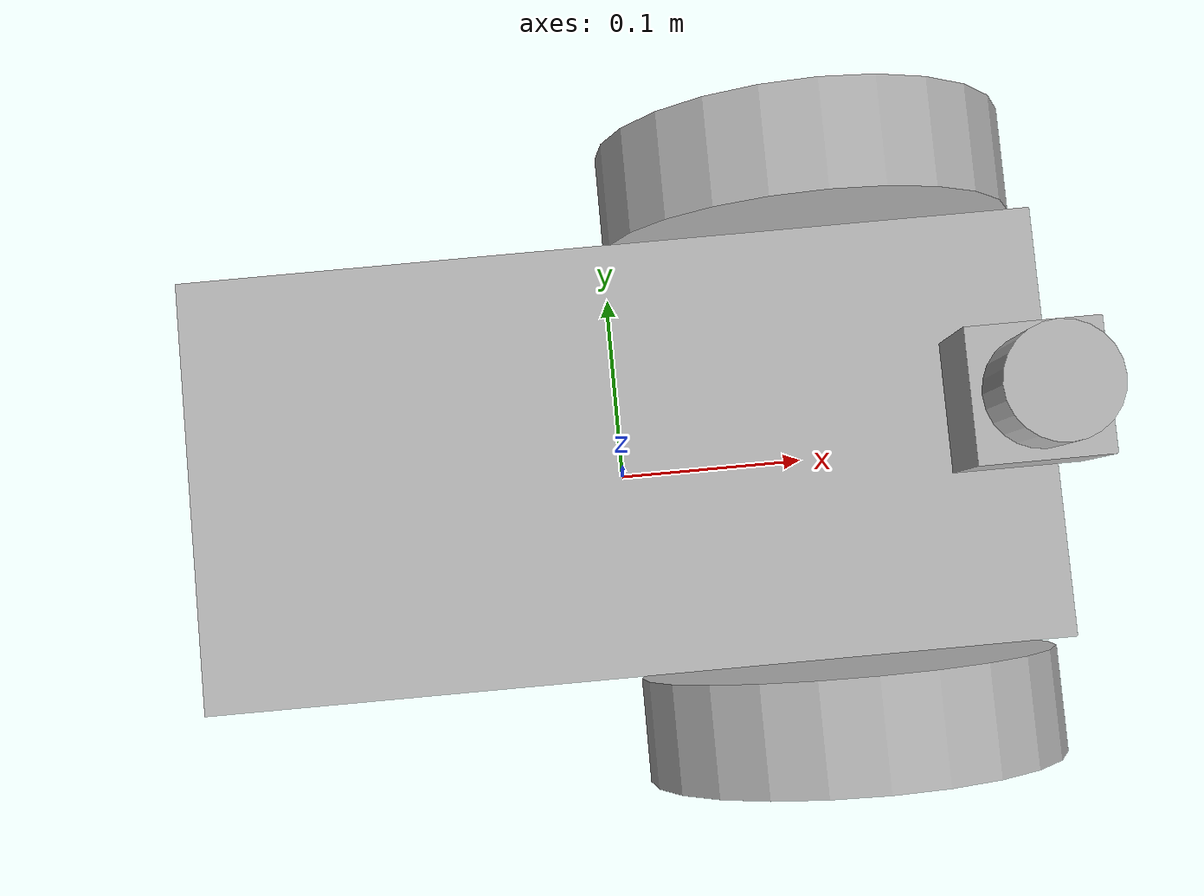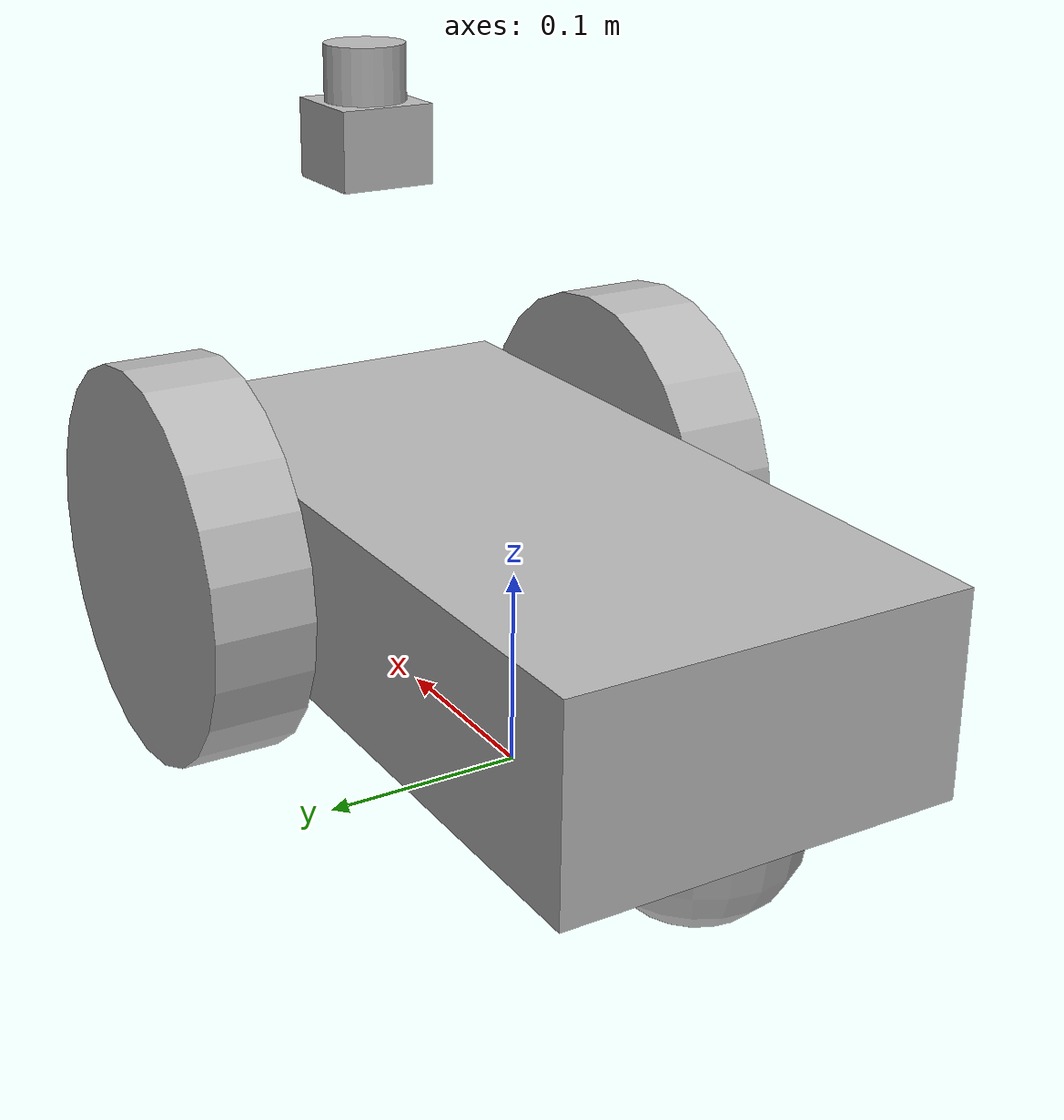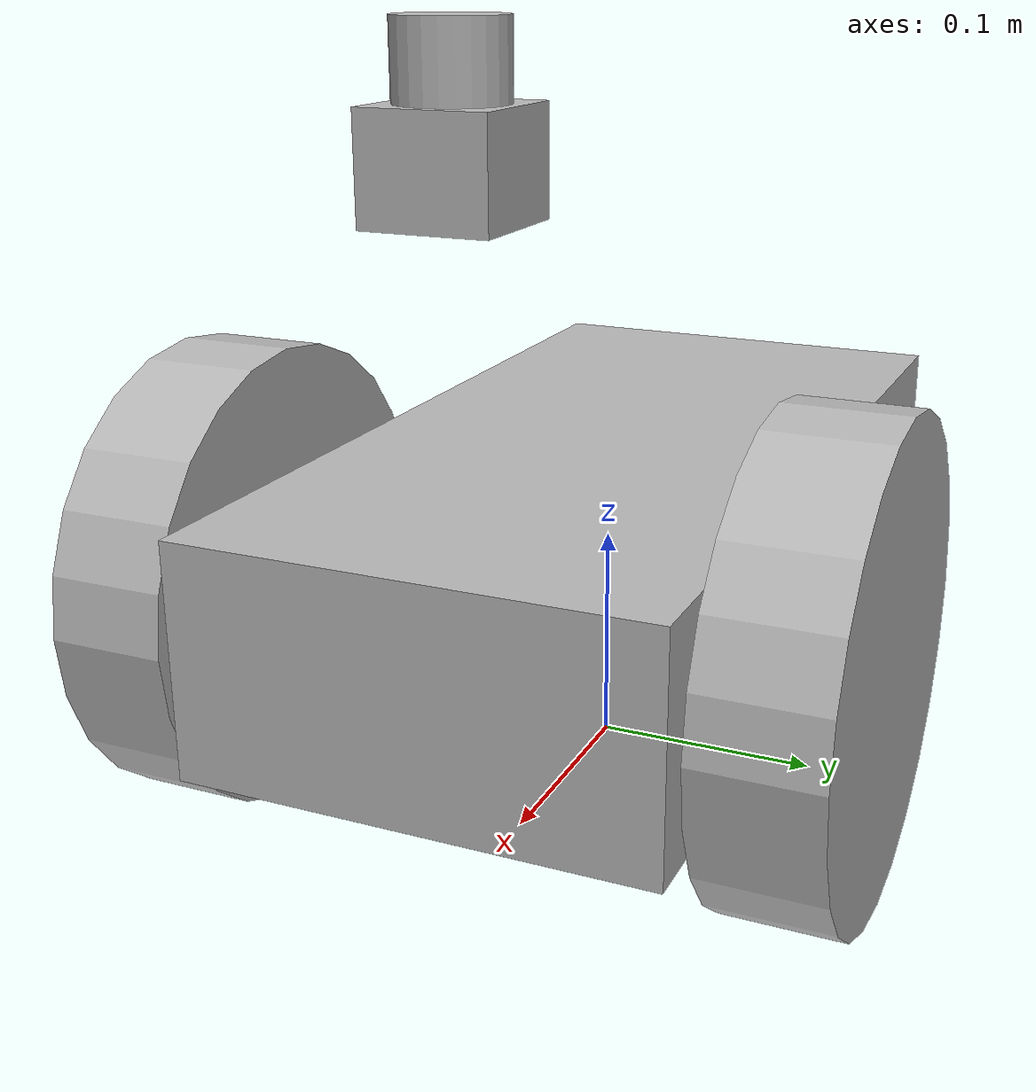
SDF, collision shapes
<?xml version='1.0'?>
  <sdf version='1.4'>
  <model name="en613">
     <static>false</static>
          <link name='chassis'>
            <pose>0 0 .1 0 0 0</pose>
            <inertial>
              <mass>5.0</mass>
              <inertia>
                <ixx> 0.104167 </ixx>
                <ixy>0</ixy>
                <ixz>0</ixz>
                <iyy> 0.3375 </iyy>
                <iyz>0</iyz>
                <izz> 0.441667 </izz>
              </inertia>
            </inertial>
            <collision name='collision'>
              <geometry>
                <box>
                  <size>.4 .2 .1</size>
                </box>
              </geometry>
            </collision>
    <visual name='visual'>
      <pose> 0 0 0.05 0 0 0 </pose>
      <geometry>
        <mesh>
          <uri>model://pioneer2dx/meshes/chassis.dae</uri>
          <scale> 0.9 0.5 0.5 </scale>
        </mesh>
      </geometry>
    </visual>

            <collision name='caster_collision'>
            <pose>-0.15 0 -0.05 0 0 0</pose>
            <geometry>
                <sphere>
                <radius>.05</radius>
              </sphere>
            </geometry>

            <surface>
              <friction>
                <ode>
                  <mu>0</mu>
                  <mu2>0</mu2>
                  <slip1>1.0</slip1>
                  <slip2>1.0</slip2>
                </ode>
              </friction>
            </surface>
          </collision>

          <visual name='caster_visual'>
            <pose>-0.15 0 -0.05 0 0 0</pose>
            <mass>0.5</mass>
            <inertia>
              <ixx>0.0005</ixx>
              <ixy>0</ixy>
              <ixz>0</ixz>
              <iyy>0.0005</iyy>
              <iyz>0</iyz>
              <izz>0.0005</izz>
            </inertia>
            <geometry>
              <sphere>
                <radius>.05</radius>
              </sphere>
            </geometry>
          </visual>
      </link>
      <link name="left_wheel">
        <pose>0.1 0.13 0.1 0 1.5707 1.5707</pose>
        <inertial>
          <mass>1</mass>
          <inertia>
            <ixx>0.002708</ixx>
            <ixy>0</ixy>
            <ixz>0</ixz>
            <iyy>0.002708</iyy>
            <iyz>0</iyz>
            <izz>0.005</izz>
          </inertia>
        </inertial>
        <collision name="collision">
          <geometry>
            <cylinder>
              <radius>.1</radius>
              <length>.05</length>
            </cylinder>
          </geometry>
        </collision>
        <visual name="visual">
          <geometry>
            <cylinder>
              <radius>.1</radius>
              <length>.05</length>
            </cylinder>
          </geometry>
        </visual>
      </link>
      <link name="right_wheel">
        <pose>0.1 -0.13 0.1 0 1.5707 1.5707</pose>
        <inertial>
          <mass>1</mass>
          <inertia>
            <ixx>0.002708</ixx>
            <ixy>0</ixy>
            <ixz>0</ixz>
            <iyy>0.002708</iyy>
            <iyz>0</iyz>
            <izz>0.005</izz>
          </inertia>
        </inertial>
        <collision name="collision">
          <geometry>
            <cylinder>
              <radius>.1</radius>
              <length>.05</length>
            </cylinder>
          </geometry>
        </collision>
        <visual name="visual">
          <geometry>
            <cylinder>
              <radius>.1</radius>
              <length>.05</length>
            </cylinder>
          </geometry>
        </visual>
      </link>

      <joint type="revolute" name="left_wheel_hinge">
        <origin>0 0 -0.03 0 0 0</origin>
        <child>left_wheel</child>
        <parent>chassis</parent>
        <axis>

          <xyz>0 1 0</xyz>
        </axis>
      </joint>

      <joint type="revolute" name="right_wheel_hinge">
        <origin>0 0 0.03 0 0 0</origin>
        <child>right_wheel</child>
        <parent>chassis</parent>
        <axis>
          <xyz>0 1 0</xyz>
        </axis>
      </joint>

      <joint type="fixed" name="laser_joint">
        <child>laser_link</child>
        <parent>chassis</parent>
        <origin>0 0 0.03 0 0 0</origin>
      </joint>

    <link name="laser_link">
      <inertial>
        <mass>0.25</mass>
        <inertia>
          <ixx>0.000045</ixx>
          <ixy>0</ixy>
          <ixz>0</ixz>
          <iyy>0.000045</iyy>
          <iyz>0</iyz>
          <izz>0.000055</izz>
        </inertia>
      </inertial>
      <pose>0.15 0 0.3 0 0 0</pose>
      <visual name="visual">
        <geometry>
          <mesh>
            <uri>model://hokuyo/meshes/hokuyo.dae</uri>
          </mesh>
        </geometry>
      </visual>
      <collision name="collision-base">
        <pose>0 0 -0.0145 0 0 0</pose>
        <geometry>
          <box>
            <size>0.05 0.05 0.041</size>
          </box>
        </geometry>
      </collision>
      <collision name="collision-top">
        <pose>0 0 0.0205 0 0 0</pose>
        <geometry>
          <cylinder>
            <radius>0.021</radius>
            <length>0.029</length>
          </cylinder>
        </geometry>
      </collision>
	      <sensor name="laser" type="ray">
		<pose>0.01 0 0.0175 0 -0 0</pose>
		<ray>
		  <scan>
		    <horizontal>
		      <samples>340</samples>
		      <resolution>1</resolution>
		      <min_angle>-2.26889</min_angle>
		      <max_angle>2.268899</max_angle>
		    </horizontal>
		  </scan>
		  <range>
		    <min>0.1</min>
		    <max>10</max>
		    <resolution>0.05</resolution>
		  </range>
		</ray>
		<always_on>1</always_on>
		<update_rate>10</update_rate>
		<visualize>true</visualize>
		<plugin name='laser' filename='libgazebo_ros_ray_sensor.so'>

		<ros>
		  <namespace>/en613</namespace>
		  <argument>~/out:=scan</argument>
		</ros>
		<frame_name>laser_link</frame_name>
		<output_type>sensor_msgs/LaserScan</output_type>

		</plugin>
	      </sensor>
    </link>

    <plugin name='diff_drive' filename='libgazebo_ros_diff_drive.so'>

      <ros>
        <namespace>/en613</namespace>
        <remapping>cmd_vel:=cmd_vel</remapping>
        <remapping>odom:=odom</remapping>
      </ros>

        <!-- wheels -->
      <left_joint>left_wheel_hinge</left_joint>
      <right_joint>right_wheel_hinge</right_joint>

        <!-- kinematics -->
      <wheel_separation>0.26</wheel_separation>
      <wheel_diameter>0.2</wheel_diameter>

        <!-- limits -->
      <max_wheel_torque>20</max_wheel_torque>
      <max_wheel_acceleration>1.0</max_wheel_acceleration>

        <!-- output -->
      <publish_odom>true</publish_odom>
      <publish_odom_tf>true</publish_odom_tf>
      <publish_wheel_tf>true</publish_wheel_tf>

      <odometry_frame>odom</odometry_frame>
      <robot_base_frame>chassis</robot_base_frame>

      <odometrySource>ENCODER</odometrySource>
  </plugin>
  </model>
</sdf>
